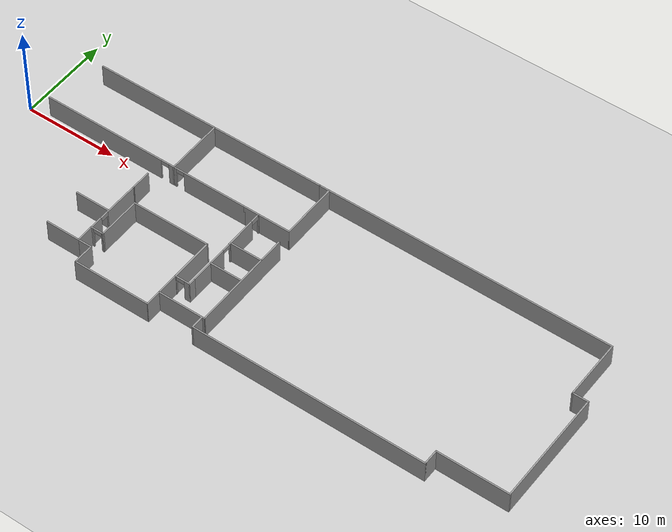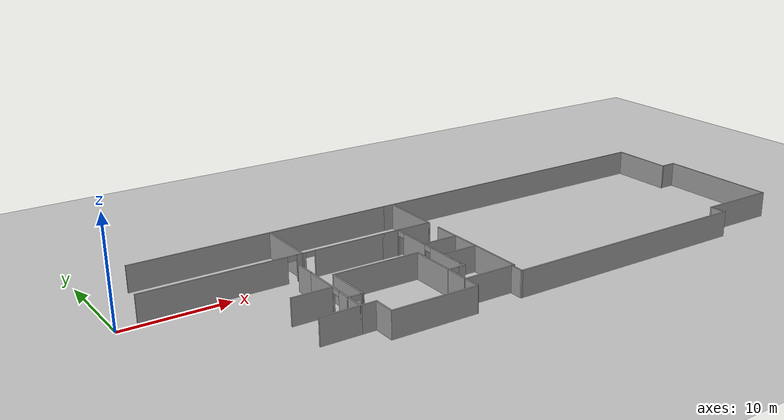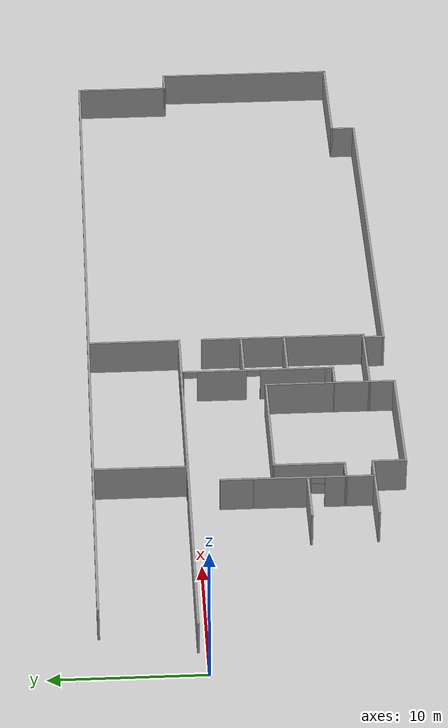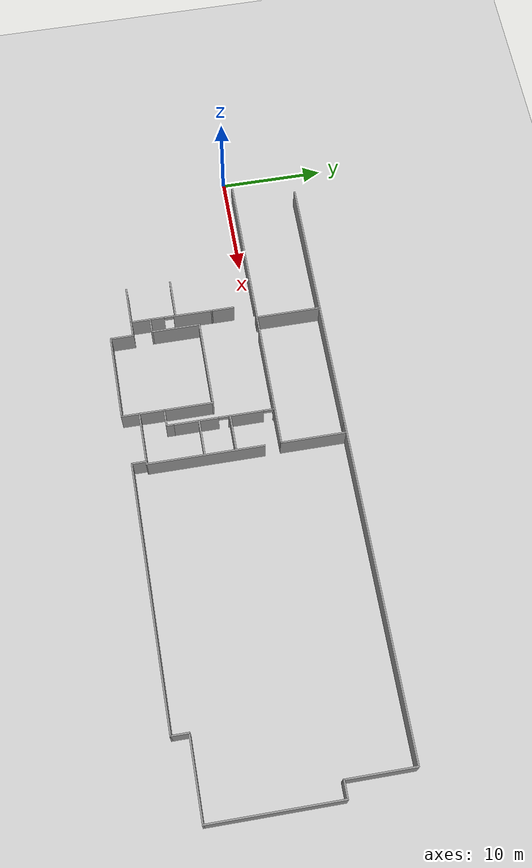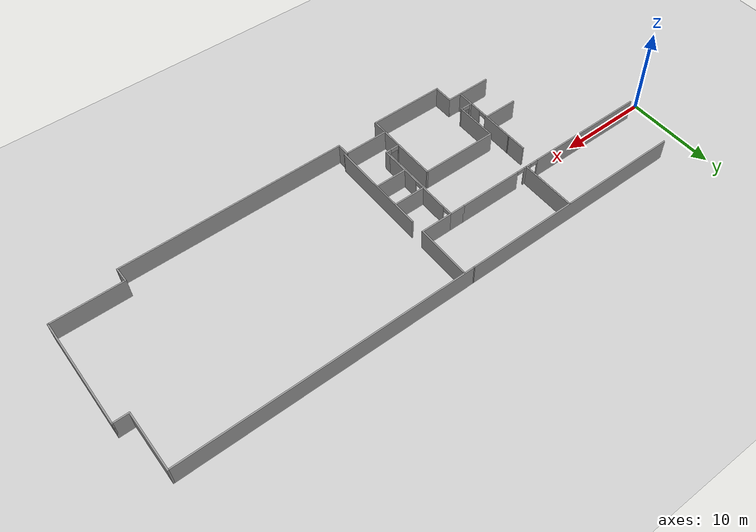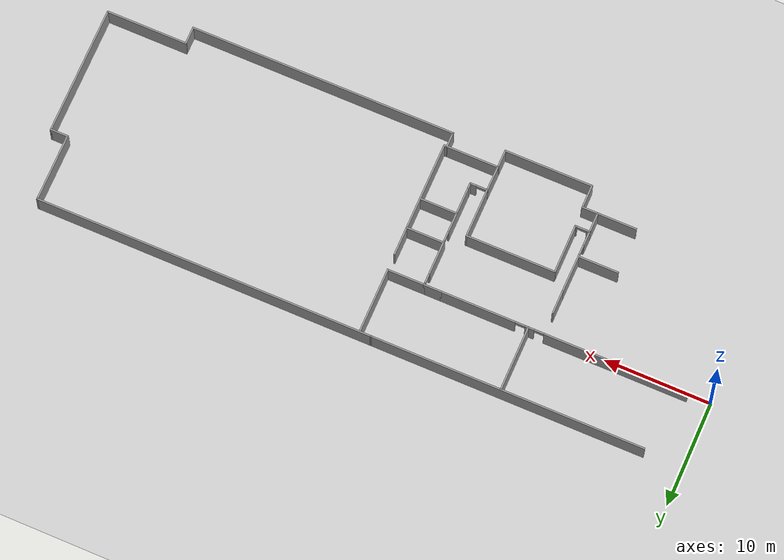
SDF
<sdf version="1.7">
 <world name="default">
  <model name="ground_plane">
   <static>1</static>
   <link name="link">
    <collision name="collision">
     <geometry><plane><normal>0 0 1</normal><size>100 100</size></plane></geometry>
     <surface>
      <contact><collide_bitmask>65535</collide_bitmask></contact>
      <friction><ode><mu>100</mu><mu2>50</mu2></ode></friction>
     </surface>
    </collision>
    <visual name="visual">
     <cast_shadows>0</cast_shadows>
     <geometry><plane><normal>0 0 1</normal><size>100 100</size></plane></geometry>
     <material>
      <script><uri>file://media/materials/scripts/gazebo.material</uri><name>Gazebo/Grey</name></script>
     </material>
    </visual>
   </link>
  </model>
  <model name="SMU_4th_Floor">
   <pose>21.2656 -3.42392 0 0 -0 0</pose>
   <link name="Wall_101">
    <collision name="Wall_101_Collision">
     <geometry><box><size>1.5 0.15 2.5</size></box></geometry>
     <pose>0 0 1.25 0 -0 0</pose>
    </collision>
    <visual name="Wall_101_Visual">
     <pose>0 0 1.25 0 -0 0</pose>
     <geometry><box><size>1.5 0.15 2.5</size></box></geometry>
     <material>
      <script><uri>file://media/materials/scripts/gazebo.material</uri><name>Gazebo/Grey</name></script>
      <ambient>1 1 1 1</ambient>
     </material>
     <meta><layer>0</layer></meta>
    </visual>
    <pose>8.74333 -9.19549 0 0 -0 1.5708</pose>
   </link>
   <link name="Wall_102">
    <collision name="Wall_102_Collision">
     <geometry><box><size>5 0.15 2.5</size></box></geometry>
     <pose>0 0 1.25 0 -0 0</pose>
    </collision>
    <visual name="Wall_102_Visual">
     <pose>0 0 1.25 0 -0 0</pose>
     <geometry><box><size>5 0.15 2.5</size></box></geometry>
     <material>
      <script><uri>file://media/materials/scripts/gazebo.material</uri><name>Gazebo/Grey</name></script>
      <ambient>1 1 1 1</ambient>
     </material>
     <meta><layer>0</layer></meta>
    </visual>
    <pose>6.31833 -8.52049 0 0 -0 3.14159</pose>
   </link>
   <link name="Wall_103">
    <collision name="Wall_103_Collision">
     <geometry><box><size>2.49105 0.15 2.5</size></box></geometry>
     <pose>0 0 1.25 0 -0 0</pose>
    </collision>
    <visual name="Wall_103_Visual">
     <pose>0 0 1.25 0 -0 0</pose>
     <geometry><box><size>2.49105 0.15 2.5</size></box></geometry>
     <material>
      <script><uri>file://media/materials/scripts/gazebo.material</uri><name>Gazebo/Grey</name></script>
      <ambient>1 1 1 1</ambient>
     </material>
     <meta><layer>0</layer></meta>
    </visual>
    <pose>3.90663 -7.35004 0 0 -0 1.55943</pose>
   </link>
   <link name="Wall_105">
    <collision name="Wall_105_Collision">
     <geometry><box><size>6.25 0.15 2.5</size></box></geometry>
     <pose>0 0 1.25 0 -0 0</pose>
    </collision>
    <visual name="Wall_105_Visual">
     <pose>0 0 1.25 0 -0 0</pose>
     <geometry><box><size>6.25 0.15 2.5</size></box></geometry>
     <material>
      <script><uri>file://media/materials/scripts/gazebo.material</uri><name>Gazebo/Grey</name></script>
      <ambient>1 1 1 1</ambient>
     </material>
     <meta><layer>0</layer></meta>
    </visual>
    <pose>-4.29599 7.06809 0 0 -0 -1.5708</pose>
   </link>
   <link name="Wall_107">
    <collision name="Wall_107_Collision">
     <geometry><box><size>1.6 0.15 2.5</size></box></geometry>
     <pose>0 0 1.25 0 -0 0</pose>
    </collision>
    <visual name="Wall_107_Visual">
     <pose>0 0 1.25 0 -0 0</pose>
     <geometry><box><size>1.6 0.15 2.5</size></box></geometry>
     <material>
      <script><uri>file://media/materials/scripts/gazebo.material</uri><name>Gazebo/Grey</name></script>
      <ambient>1 1 1 1</ambient>
     </material>
     <meta><layer>0</layer></meta>
    </visual>
    <pose>-5.05507 -8.02959 0 0 -0 0</pose>
   </link>
   <link name="Wall_109">
    <collision name="Wall_109_Collision">
     <geometry><box><size>2.3 0.15 2.5</size></box></geometry>
     <pose>0 0 1.25 0 -0 0</pose>
    </collision>
    <visual name="Wall_109_Visual">
     <pose>0 0 1.25 0 -0 0</pose>
     <geometry><box><size>2.3 0.15 2.5</size></box></geometry>
     <material>
      <script><uri>file://media/materials/scripts/gazebo.material</uri><name>Gazebo/Grey</name></script>
      <ambient>1 1 1 1</ambient>
     </material>
     <meta><layer>0</layer></meta>
    </visual>
    <pose>-4.33007 -9.10459 0 0 -0 -1.5708</pose>
   </link>
   <link name="Wall_111">
    <collision name="Wall_111_Collision">
     <geometry><box><size>8.3 0.15 2.5</size></box></geometry>
     <pose>0 0 1.25 0 -0 0</pose>
    </collision>
    <visual name="Wall_111_Visual">
     <pose>0 0 1.25 0 -0 0</pose>
     <geometry><box><size>8.3 0.15 2.5</size></box></geometry>
     <material>
      <script><uri>file://media/materials/scripts/gazebo.material</uri><name>Gazebo/Grey</name></script>
      <ambient>1 1 1 1</ambient>
     </material>
     <meta><layer>0</layer></meta>
    </visual>
    <pose>-0.255066 -10.1796 0 0 -0 0</pose>
   </link>
   <link name="Wall_113">
    <collision name="Wall_113_Collision">
     <geometry><box><size>1.8 0.15 2.5</size></box></geometry>
     <pose>0 0 1.25 0 -0 0</pose>
    </collision>
    <visual name="Wall_113_Visual">
     <pose>0 0 1.25 0 -0 0</pose>
     <geometry><box><size>1.8 0.15 2.5</size></box></geometry>
     <material>
      <script><uri>file://media/materials/scripts/gazebo.material</uri><name>Gazebo/Grey</name></script>
      <ambient>1 1 1 1</ambient>
     </material>
     <meta><layer>0</layer></meta>
    </visual>
    <pose>3.89333 -9.34549 0 0 -0 -1.5708</pose>
   </link>
   <link name="Wall_115">
    <collision name="Wall_115_Collision">
     <geometry><box><size>11.11 0.15 2.5</size></box></geometry>
     <pose>0 0 1.25 0 -0 0</pose>
    </collision>
    <visual name="Wall_115_Visual">
     <pose>0 0 1.25 0 -0 0</pose>
     <geometry><box><size>11.11 0.15 2.5</size></box></geometry>
     <material>
      <script><uri>file://media/materials/scripts/gazebo.material</uri><name>Gazebo/Grey</name></script>
      <ambient>1 1 1 1</ambient>
     </material>
     <meta><layer>0</layer></meta>
    </visual>
    <pose>8.99588 -3.03503 0 0 -0 -1.5708</pose>
   </link>
   <link name="Wall_119">
    <collision name="Wall_119_Collision">
     <geometry><box><size>0.402607 0.15 2.5</size></box></geometry>
     <pose>0 0 1.25 0 -0 0</pose>
    </collision>
    <visual name="Wall_119_Visual">
     <pose>0 0 1.25 0 -0 0</pose>
     <geometry><box><size>0.402607 0.15 2.5</size></box></geometry>
     <material>
      <script><uri>file://media/materials/scripts/gazebo.material</uri><name>Gazebo/Grey</name></script>
      <ambient>1 1 1 1</ambient>
     </material>
     <meta><layer>0</layer></meta>
    </visual>
    <pose>8.86961 -8.51776 0 0 -0 0.02159</pose>
   </link>
   <link name="Wall_122">
    <collision name="Wall_122_Collision">
     <geometry><box><size>3.5 0.15 2.5</size></box></geometry>
     <pose>0 0 1.25 0 -0 0</pose>
    </collision>
    <visual name="Wall_122_Visual">
     <pose>0 0 1.25 0 -0 0</pose>
     <geometry><box><size>3.5 0.15 2.5</size></box></geometry>
     <material>
      <script><uri>file://media/materials/scripts/gazebo.material</uri><name>Gazebo/Grey</name></script>
      <ambient>1 1 1 1</ambient>
     </material>
     <meta><layer>0</layer></meta>
    </visual>
    <pose>7.22208 -3.13125 0 0 -0 0</pose>
   </link>
   <link name="Wall_124">
    <collision name="Wall_124_Collision">
     <geometry><box><size>3.5 0.15 2.5</size></box></geometry>
     <pose>0 0 1.25 0 -0 0</pose>
    </collision>
    <visual name="Wall_124_Visual">
     <pose>0 0 1.25 0 -0 0</pose>
     <geometry><box><size>3.5 0.15 2.5</size></box></geometry>
     <material>
      <script><uri>file://media/materials/scripts/gazebo.material</uri><name>Gazebo/Grey</name></script>
      <ambient>1 1 1 1</ambient>
     </material>
     <meta><layer>0</layer></meta>
    </visual>
    <pose>7.28373 -0.193726 0 0 -0 3.14159</pose>
   </link>
   <link name="Wall_126">
    <collision name="Wall_126_Collision">
     <geometry><box><size>3.6 0.15 2.5</size></box></geometry>
     <pose>0 0 1.25 0 -0 0</pose>
    </collision>
    <visual name="Wall_126_Visual">
     <pose>0 0 1.25 0 -0 0</pose>
     <geometry><box><size>3.6 0.15 2.5</size></box></geometry>
     <material>
      <script><uri>file://media/materials/scripts/gazebo.material</uri><name>Gazebo/Grey</name></script>
      <ambient>1 1 1 1</ambient>
     </material>
     <meta><layer>0</layer></meta>
    </visual>
    <pose>7.24493 4.02041 0 0 -0 0</pose>
   </link>
   <link name="Wall_129">
    <collision name="Wall_129_Collision">
     <geometry><box><size>6.25 0.15 2.5</size></box></geometry>
     <pose>0 0 1.25 0 -0 0</pose>
    </collision>
    <visual name="Wall_129_Visual">
     <pose>0 0 1.25 0 -0 0</pose>
     <geometry><box><size>6.25 0.15 2.5</size></box></geometry>
     <material>
      <script><uri>file://media/materials/scripts/gazebo.material</uri><name>Gazebo/Grey</name></script>
      <ambient>1 1 1 1</ambient>
     </material>
     <meta><layer>0</layer></meta>
    </visual>
    <pose>8.96993 7.07041 0 0 -0 1.5708</pose>
   </link>
   <link name="Wall_22">
    <pose>-7.63007 4.02041 0 0 -0 0</pose>
    <visual name="Wall_22_Visual_0">
     <pose>-4.87483 0 1.25 0 -0 0</pose>
     <geometry><box><size>13.5003 0.15 2.5</size></box></geometry>
     <material>
      <script><uri>file://media/materials/scripts/gazebo.material</uri><name>Gazebo/Grey</name></script>
      <ambient>1 1 1 1</ambient>
     </material>
     <meta><layer>0</layer></meta>
    </visual>
    <collision name="Wall_22_Collision_0">
     <geometry><box><size>13.5003 0.15 2.5</size></box></geometry>
     <pose>-4.87483 0 1.25 0 -0 0</pose>
    </collision>
    <visual name="Wall_22_Visual_1">
     <pose>3.21141 0 1.25 0 -0 0</pose>
     <geometry><box><size>0.87215 0.15 2.5</size></box></geometry>
     <material>
      <script><uri>file://media/materials/scripts/gazebo.material</uri><name>Gazebo/Grey</name></script>
      <ambient>1 1 1 1</ambient>
     </material>
     <meta><layer>0</layer></meta>
    </visual>
    <collision name="Wall_22_Collision_1">
     <geometry><box><size>0.87215 0.15 2.5</size></box></geometry>
     <pose>3.21141 0 1.25 0 -0 0</pose>
    </collision>
    <visual name="Wall_22_Visual_2">
     <pose>8.08624 0 1.25 0 -0 0</pose>
     <geometry><box><size>7.07751 0.15 2.5</size></box></geometry>
     <material>
      <script><uri>file://media/materials/scripts/gazebo.material</uri><name>Gazebo/Grey</name></script>
      <ambient>1 1 1 1</ambient>
     </material>
     <meta><layer>0</layer></meta>
    </visual>
    <collision name="Wall_22_Collision_2">
     <geometry><box><size>7.07751 0.15 2.5</size></box></geometry>
     <pose>8.08624 0 1.25 0 -0 0</pose>
    </collision>
    <visual name="Wall_22_Visual_3">
     <pose>2.32534 0 2.25 0 -0 0</pose>
     <geometry><box><size>0.9 0.15 0.5</size></box></geometry>
     <material>
      <script><uri>file://media/materials/scripts/gazebo.material</uri><name>Gazebo/Grey</name></script>
      <ambient>1 1 1 1</ambient>
     </material>
     <meta><layer>0</layer></meta>
    </visual>
    <collision name="Wall_22_Collision_3">
     <geometry><box><size>0.9 0.15 0.5</size></box></geometry>
     <pose>2.32534 0 2.25 0 -0 0</pose>
    </collision>
    <visual name="Wall_22_Visual_4">
     <pose>4.09749 0 2.25 0 -0 0</pose>
     <geometry><box><size>0.9 0.15 0.5</size></box></geometry>
     <material>
      <script><uri>file://media/materials/scripts/gazebo.material</uri><name>Gazebo/Grey</name></script>
      <ambient>1 1 1 1</ambient>
     </material>
     <meta><layer>0</layer></meta>
    </visual>
    <collision name="Wall_22_Collision_4">
     <geometry><box><size>0.9 0.15 0.5</size></box></geometry>
     <pose>4.09749 0 2.25 0 -0 0</pose>
    </collision>
   </link>
   <link name="Wall_24">
    <collision name="Wall_24_Collision">
     <geometry><box><size>1.75 0.15 2.5</size></box></geometry>
     <pose>0 0 1.25 0 -0 0</pose>
    </collision>
    <visual name="Wall_24_Visual">
     <pose>0 0 1.25 0 -0 0</pose>
     <geometry><box><size>1.75 0.15 2.5</size></box></geometry>
     <material>
      <script><uri>file://media/materials/scripts/gazebo.material</uri><name>Gazebo/Grey</name></script>
      <ambient>1 1 1 1</ambient>
     </material>
     <meta><layer>0</layer></meta>
    </visual>
    <pose>4.71993 4.02041 0 0 -0 0</pose>
   </link>
   <link name="Wall_26">
    <pose>5.51994 -0.779592 0 0 -0 -1.5708</pose>
    <visual name="Wall_26_Visual_0">
     <pose>-4.74915 0 1.25 0 -0 0</pose>
     <geometry><box><size>0.251694 0.15 2.5</size></box></geometry>
     <material>
      <script><uri>file://media/materials/scripts/gazebo.material</uri><name>Gazebo/Grey</name></script>
      <ambient>1 1 1 1</ambient>
     </material>
     <meta><layer>0</layer></meta>
    </visual>
    <collision name="Wall_26_Collision_0">
     <geometry><box><size>0.251694 0.15 2.5</size></box></geometry>
     <pose>-4.74915 0 1.25 0 -0 0</pose>
    </collision>
    <visual name="Wall_26_Visual_1">
     <pose>-2.05701 0 1.25 0 -0 0</pose>
     <geometry><box><size>3.33259 0.15 2.5</size></box></geometry>
     <material>
      <script><uri>file://media/materials/scripts/gazebo.material</uri><name>Gazebo/Grey</name></script>
      <ambient>1 1 1 1</ambient>
     </material>
     <meta><layer>0</layer></meta>
    </visual>
    <collision name="Wall_26_Collision_1">
     <geometry><box><size>3.33259 0.15 2.5</size></box></geometry>
     <pose>-2.05701 0 1.25 0 -0 0</pose>
    </collision>
    <visual name="Wall_26_Visual_2">
     <pose>2.69215 0 1.25 0 -0 0</pose>
     <geometry><box><size>4.36571 0.15 2.5</size></box></geometry>
     <material>
      <script><uri>file://media/materials/scripts/gazebo.material</uri><name>Gazebo/Grey</name></script>
      <ambient>1 1 1 1</ambient>
     </material>
     <meta><layer>0</layer></meta>
    </visual>
    <collision name="Wall_26_Collision_2">
     <geometry><box><size>4.36571 0.15 2.5</size></box></geometry>
     <pose>2.69215 0 1.25 0 -0 0</pose>
    </collision>
    <visual name="Wall_26_Visual_3">
     <pose>-4.17331 0 2.25 0 -0 0</pose>
     <geometry><box><size>0.9 0.15 0.5</size></box></geometry>
     <material>
      <script><uri>file://media/materials/scripts/gazebo.material</uri><name>Gazebo/Grey</name></script>
      <ambient>1 1 1 1</ambient>
     </material>
     <meta><layer>0</layer></meta>
    </visual>
    <collision name="Wall_26_Collision_3">
     <geometry><box><size>0.9 0.15 0.5</size></box></geometry>
     <pose>-4.17331 0 2.25 0 -0 0</pose>
    </collision>
    <visual name="Wall_26_Visual_4">
     <pose>0.059289 0 2.25 0 -0 0</pose>
     <geometry><box><size>0.9 0.15 0.5</size></box></geometry>
     <material>
      <script><uri>file://media/materials/scripts/gazebo.material</uri><name>Gazebo/Grey</name></script>
      <ambient>1 1 1 1</ambient>
     </material>
     <meta><layer>0</layer></meta>
    </visual>
    <collision name="Wall_26_Collision_4">
     <geometry><box><size>0.9 0.15 0.5</size></box></geometry>
     <pose>0.059289 0 2.25 0 -0 0</pose>
    </collision>
   </link>
   <link name="Wall_34">
    <collision name="Wall_34_Collision">
     <geometry><box><size>0.75 0.15 2.5</size></box></geometry>
     <pose>0 0 1.25 0 -0 0</pose>
    </collision>
    <visual name="Wall_34_Visual">
     <pose>0 0 1.25 0 -0 0</pose>
     <geometry><box><size>0.75 0.15 2.5</size></box></geometry>
     <material>
      <script><uri>file://media/materials/scripts/gazebo.material</uri><name>Gazebo/Grey</name></script>
      <ambient>1 1 1 1</ambient>
     </material>
     <meta><layer>0</layer></meta>
    </visual>
    <pose>5.51994 -5.87959 0 0 -0 -1.5708</pose>
   </link>
   <link name="Wall_35">
    <pose>4.71993 -6.17959 0 0 -0 3.14159</pose>
    <visual name="Wall_35_Visual_0">
     <pose>-0.547736 0 1.25 0 -0 0</pose>
     <geometry><box><size>0.654529 0.15 2.5</size></box></geometry>
     <material>
      <script><uri>file://media/materials/scripts/gazebo.material</uri><name>Gazebo/Grey</name></script>
      <ambient>1 1 1 1</ambient>
     </material>
     <meta><layer>0</layer></meta>
    </visual>
    <collision name="Wall_35_Collision_0">
     <geometry><box><size>0.654529 0.15 2.5</size></box></geometry>
     <pose>-0.547736 0 1.25 0 -0 0</pose>
    </collision>
    <visual name="Wall_35_Visual_1">
     <pose>0.777264 0 1.25 0 -0 0</pose>
     <geometry><box><size>0.195471 0.15 2.5</size></box></geometry>
     <material>
      <script><uri>file://media/materials/scripts/gazebo.material</uri><name>Gazebo/Grey</name></script>
      <ambient>1 1 1 1</ambient>
     </material>
     <meta><layer>0</layer></meta>
    </visual>
    <collision name="Wall_35_Collision_1">
     <geometry><box><size>0.195471 0.15 2.5</size></box></geometry>
     <pose>0.777264 0 1.25 0 -0 0</pose>
    </collision>
    <visual name="Wall_35_Visual_2">
     <pose>0.229529 0 2.25 0 -0 0</pose>
     <geometry><box><size>0.9 0.15 0.5</size></box></geometry>
     <material>
      <script><uri>file://media/materials/scripts/gazebo.material</uri><name>Gazebo/Grey</name></script>
      <ambient>1 1 1 1</ambient>
     </material>
     <meta><layer>0</layer></meta>
    </visual>
    <collision name="Wall_35_Collision_2">
     <geometry><box><size>0.9 0.15 0.5</size></box></geometry>
     <pose>0.229529 0 2.25 0 -0 0</pose>
    </collision>
   </link>
   <link name="Wall_36">
    <collision name="Wall_36_Collision">
     <geometry><box><size>4.75 0.15 2.5</size></box></geometry>
     <pose>0 0 1.25 0 -0 0</pose>
    </collision>
    <visual name="Wall_36_Visual">
     <pose>0 0 1.25 0 -0 0</pose>
     <geometry><box><size>4.75 0.15 2.5</size></box></geometry>
     <material>
      <script><uri>file://media/materials/scripts/gazebo.material</uri><name>Gazebo/Grey</name></script>
      <ambient>1 1 1 1</ambient>
     </material>
     <meta><layer>0</layer></meta>
    </visual>
    <pose>3.91994 -3.87959 0 0 -0 1.5708</pose>
   </link>
   <link name="Wall_37">
    <collision name="Wall_37_Collision">
     <geometry><box><size>8.5 0.15 2.5</size></box></geometry>
     <pose>0 0 1.25 0 -0 0</pose>
    </collision>
    <visual name="Wall_37_Visual">
     <pose>0 0 1.25 0 -0 0</pose>
     <geometry><box><size>8.5 0.15 2.5</size></box></geometry>
     <material>
      <script><uri>file://media/materials/scripts/gazebo.material</uri><name>Gazebo/Grey</name></script>
      <ambient>1 1 1 1</ambient>
     </material>
     <meta><layer>0</layer></meta>
    </visual>
    <pose>-0.255066 -1.57959 0 0 -0 3.14159</pose>
   </link>
   <link name="Wall_38">
    <collision name="Wall_38_Collision">
     <geometry><box><size>4.75 0.15 2.5</size></box></geometry>
     <pose>0 0 1.25 0 -0 0</pose>
    </collision>
    <visual name="Wall_38_Visual">
     <pose>0 0 1.25 0 -0 0</pose>
     <geometry><box><size>4.75 0.15 2.5</size></box></geometry>
     <material>
      <script><uri>file://media/materials/scripts/gazebo.material</uri><name>Gazebo/Grey</name></script>
      <ambient>1 1 1 1</ambient>
     </material>
     <meta><layer>0</layer></meta>
    </visual>
    <pose>-4.43007 -3.87959 0 0 -0 -1.5708</pose>
   </link>
   <link name="Wall_40">
    <pose>-5.10506 -6.17959 0 0 -0 3.14159</pose>
    <visual name="Wall_40_Visual_0">
     <pose>-0.626564 0 1.25 0 -0 0</pose>
     <geometry><box><size>0.246873 0.15 2.5</size></box></geometry>
     <material>
      <script><uri>file://media/materials/scripts/gazebo.material</uri><name>Gazebo/Grey</name></script>
      <ambient>1 1 1 1</ambient>
     </material>
     <meta><layer>0</layer></meta>
    </visual>
    <collision name="Wall_40_Collision_0">
     <geometry><box><size>0.246873 0.15 2.5</size></box></geometry>
     <pose>-0.626564 0 1.25 0 -0 0</pose>
    </collision>
    <visual name="Wall_40_Visual_1">
     <pose>0.573436 0 1.25 0 -0 0</pose>
     <geometry><box><size>0.353127 0.15 2.5</size></box></geometry>
     <material>
      <script><uri>file://media/materials/scripts/gazebo.material</uri><name>Gazebo/Grey</name></script>
      <ambient>1 1 1 1</ambient>
     </material>
     <meta><layer>0</layer></meta>
    </visual>
    <collision name="Wall_40_Collision_1">
     <geometry><box><size>0.353127 0.15 2.5</size></box></geometry>
     <pose>0.573436 0 1.25 0 -0 0</pose>
    </collision>
    <visual name="Wall_40_Visual_2">
     <pose>-0.053127 0 2.25 0 -0 0</pose>
     <geometry><box><size>0.9 0.15 0.5</size></box></geometry>
     <material>
      <script><uri>file://media/materials/scripts/gazebo.material</uri><name>Gazebo/Grey</name></script>
      <ambient>1 1 1 1</ambient>
     </material>
     <meta><layer>0</layer></meta>
    </visual>
    <collision name="Wall_40_Collision_2">
     <geometry><box><size>0.9 0.15 0.5</size></box></geometry>
     <pose>-0.053127 0 2.25 0 -0 0</pose>
    </collision>
   </link>
   <link name="Wall_41">
    <pose>-5.75507 -3.17959 0 0 -0 1.56246</pose>
    <visual name="Wall_41_Visual_0">
     <pose>-2.34959 0 1.25 0 -0 0</pose>
     <geometry><box><size>1.45103 0.15 2.5</size></box></geometry>
     <material>
      <script><uri>file://media/materials/scripts/gazebo.material</uri><name>Gazebo/Grey</name></script>
      <ambient>1 1 1 1</ambient>
     </material>
     <meta><layer>0</layer></meta>
    </visual>
    <collision name="Wall_41_Collision_0">
     <geometry><box><size>1.45103 0.15 2.5</size></box></geometry>
     <pose>-2.34959 0 1.25 0 -0 0</pose>
    </collision>
    <visual name="Wall_41_Visual_1">
     <pose>1.17552 0 1.25 0 -0 0</pose>
     <geometry><box><size>3.79917 0.15 2.5</size></box></geometry>
     <material>
      <script><uri>file://media/materials/scripts/gazebo.material</uri><name>Gazebo/Grey</name></script>
      <ambient>1 1 1 1</ambient>
     </material>
     <meta><layer>0</layer></meta>
    </visual>
    <collision name="Wall_41_Collision_1">
     <geometry><box><size>3.79917 0.15 2.5</size></box></geometry>
     <pose>1.17552 0 1.25 0 -0 0</pose>
    </collision>
    <visual name="Wall_41_Visual_2">
     <pose>-1.17407 0 2.25 0 -0 0</pose>
     <geometry><box><size>0.9 0.15 0.5</size></box></geometry>
     <material>
      <script><uri>file://media/materials/scripts/gazebo.material</uri><name>Gazebo/Grey</name></script>
      <ambient>1 1 1 1</ambient>
     </material>
     <meta><layer>0</layer></meta>
    </visual>
    <collision name="Wall_41_Collision_2">
     <geometry><box><size>0.9 0.15 0.5</size></box></geometry>
     <pose>-1.17407 0 2.25 0 -0 0</pose>
    </collision>
   </link>
   <link name="Wall_57">
    <collision name="Wall_57_Collision">
     <geometry><box><size>3.75 0.15 2.5</size></box></geometry>
     <pose>0 0 1.25 0 -0 0</pose>
    </collision>
    <visual name="Wall_57_Visual">
     <pose>0 0 1.25 0 -0 0</pose>
     <geometry><box><size>3.75 0.15 2.5</size></box></geometry>
     <material>
      <script><uri>file://media/materials/scripts/gazebo.material</uri><name>Gazebo/Grey</name></script>
      <ambient>1 1 1 1</ambient>
     </material>
     <meta><layer>0</layer></meta>
    </visual>
    <pose>-7.67211 -3.7033 0 0 -0 0</pose>
   </link>
   <link name="Wall_6">
    <collision name="Wall_6_Collision">
     <geometry><box><size>2.25 0.15 2.5</size></box></geometry>
     <pose>0 0 1.25 0 -0 0</pose>
    </collision>
    <visual name="Wall_6_Visual">
     <pose>0 0 1.25 0 -0 0</pose>
     <geometry><box><size>2.25 0.15 2.5</size></box></geometry>
     <material>
      <script><uri>file://media/materials/scripts/gazebo.material</uri><name>Gazebo/Grey</name></script>
      <ambient>1 1 1 1</ambient>
     </material>
     <meta><layer>0</layer></meta>
    </visual>
    <pose>-5.73006 0.870408 0 0 -0 1.5708</pose>
   </link>
   <link name="Wall_60">
    <collision name="Wall_60_Collision">
     <geometry><box><size>2 0.15 2.5</size></box></geometry>
     <pose>0 0 1.25 0 -0 0</pose>
    </collision>
    <visual name="Wall_60_Visual">
     <pose>0 0 1.25 0 -0 0</pose>
     <geometry><box><size>2 0.15 2.5</size></box></geometry>
     <material>
      <script><uri>file://media/materials/scripts/gazebo.material</uri><name>Gazebo/Grey</name></script>
      <ambient>1 1 1 1</ambient>
     </material>
     <meta><layer>0</layer></meta>
    </visual>
    <pose>-5.78007 -7.10459 0 0 -0 -1.5708</pose>
   </link>
   <link name="Wall_61">
    <collision name="Wall_61_Collision">
     <geometry><box><size>3.75 0.15 2.5</size></box></geometry>
     <pose>0 0 1.25 0 -0 0</pose>
    </collision>
    <visual name="Wall_61_Visual">
     <pose>0 0 1.25 0 -0 0</pose>
     <geometry><box><size>3.75 0.15 2.5</size></box></geometry>
     <material>
      <script><uri>file://media/materials/scripts/gazebo.material</uri><name>Gazebo/Grey</name></script>
      <ambient>1 1 1 1</ambient>
     </material>
     <meta><layer>0</layer></meta>
    </visual>
    <pose>-7.58007 -8.02959 0 0 -0 3.14159</pose>
   </link>
   <link name="Wall_87">
    <collision name="Wall_87_Collision">
     <geometry><box><size>25.7234 0.15 2.5</size></box></geometry>
     <pose>0 0 1.25 0 -0 0</pose>
    </collision>
    <visual name="Wall_87_Visual">
     <pose>0 0 1.25 0 -0 0</pose>
     <geometry><box><size>25.7234 0.15 2.5</size></box></geometry>
     <material>
      <script><uri>file://media/materials/scripts/gazebo.material</uri><name>Gazebo/Grey</name></script>
      <ambient>1 1 1 1</ambient>
     </material>
     <meta><layer>0</layer></meta>
    </visual>
    <pose>-4.89337 10.1662 0 0 -0 0.00104</pose>
   </link>
   <link name="Wall_89">
    <collision name="Wall_89_Collision">
     <geometry><box><size>31.9 0.15 2.5</size></box></geometry>
     <pose>0 0 1.25 0 -0 0</pose>
    </collision>
    <visual name="Wall_89_Visual">
     <pose>0 0 1.25 0 -0 0</pose>
     <geometry><box><size>31.9 0.15 2.5</size></box></geometry>
     <material>
      <script><uri>file://media/materials/scripts/gazebo.material</uri><name>Gazebo/Grey</name></script>
      <ambient>1 1 1 1</ambient>
     </material>
     <meta><layer>0</layer></meta>
    </visual>
    <pose>23.7683 10.1795 0 0 -0 0</pose>
   </link>
   <link name="Wall_91">
    <collision name="Wall_91_Collision">
     <geometry><box><size>6.5 0.15 2.5</size></box></geometry>
     <pose>0 0 1.25 0 -0 0</pose>
    </collision>
    <visual name="Wall_91_Visual">
     <pose>0 0 1.25 0 -0 0</pose>
     <geometry><box><size>6.5 0.15 2.5</size></box></geometry>
     <material>
      <script><uri>file://media/materials/scripts/gazebo.material</uri><name>Gazebo/Grey</name></script>
      <ambient>1 1 1 1</ambient>
     </material>
     <meta><layer>0</layer></meta>
    </visual>
    <pose>39.6433 7.00451 0 0 -0 -1.5708</pose>
   </link>
   <link name="Wall_92">
    <collision name="Wall_92_Collision">
     <geometry><box><size>1.75 0.15 2.5</size></box></geometry>
     <pose>0 0 1.25 0 -0 0</pose>
    </collision>
    <visual name="Wall_92_Visual">
     <pose>0 0 1.25 0 -0 0</pose>
     <geometry><box><size>1.75 0.15 2.5</size></box></geometry>
     <material>
      <script><uri>file://media/materials/scripts/gazebo.material</uri><name>Gazebo/Grey</name></script>
      <ambient>1 1 1 1</ambient>
     </material>
     <meta><layer>0</layer></meta>
    </visual>
    <pose>40.4433 3.82951 0 0 -0 0</pose>
   </link>
   <link name="Wall_94">
    <collision name="Wall_94_Collision">
     <geometry><box><size>12.25 0.15 2.5</size></box></geometry>
     <pose>0 0 1.25 0 -0 0</pose>
    </collision>
    <visual name="Wall_94_Visual">
     <pose>0 0 1.25 0 -0 0</pose>
     <geometry><box><size>12.25 0.15 2.5</size></box></geometry>
     <material>
      <script><uri>file://media/materials/scripts/gazebo.material</uri><name>Gazebo/Grey</name></script>
      <ambient>1 1 1 1</ambient>
     </material>
     <meta><layer>0</layer></meta>
    </visual>
    <pose>41.2433 -2.22049 0 0 -0 -1.5708</pose>
   </link>
   <link name="Wall_95">
    <collision name="Wall_95_Collision">
     <geometry><box><size>7.7 0.15 2.5</size></box></geometry>
     <pose>0 0 1.25 0 -0 0</pose>
    </collision>
    <visual name="Wall_95_Visual">
     <pose>0 0 1.25 0 -0 0</pose>
     <geometry><box><size>7.7 0.15 2.5</size></box></geometry>
     <material>
      <script><uri>file://media/materials/scripts/gazebo.material</uri><name>Gazebo/Grey</name></script>
      <ambient>1 1 1 1</ambient>
     </material>
     <meta><layer>0</layer></meta>
    </visual>
    <pose>37.4683 -8.27049 0 0 -0 3.14159</pose>
   </link>
   <link name="Wall_98">
    <collision name="Wall_98_Collision">
     <geometry><box><size>1.75 0.15 2.5</size></box></geometry>
     <pose>0 0 1.25 0 -0 0</pose>
    </collision>
    <visual name="Wall_98_Visual">
     <pose>0 0 1.25 0 -0 0</pose>
     <geometry><box><size>1.75 0.15 2.5</size></box></geometry>
     <material>
      <script><uri>file://media/materials/scripts/gazebo.material</uri><name>Gazebo/Grey</name></script>
      <ambient>1 1 1 1</ambient>
     </material>
     <meta><layer>0</layer></meta>
    </visual>
    <pose>33.6933 -9.07049 0 0 -0 -1.5708</pose>
   </link>
   <link name="Wall_99">
    <collision name="Wall_99_Collision">
     <geometry><box><size>25.1 0.15 2.5</size></box></geometry>
     <pose>0 0 1.25 0 -0 0</pose>
    </collision>
    <visual name="Wall_99_Visual">
     <pose>0 0 1.25 0 -0 0</pose>
     <geometry><box><size>25.1 0.15 2.5</size></box></geometry>
     <material>
      <script><uri>file://media/materials/scripts/gazebo.material</uri><name>Gazebo/Grey</name></script>
      <ambient>1 1 1 1</ambient>
     </material>
     <meta><layer>0</layer></meta>
    </visual>
    <pose>21.2183 -9.87049 0 0 -0 3.14159</pose>
   </link>
   <static>1</static>
  </model>
 </world>
</sdf>
